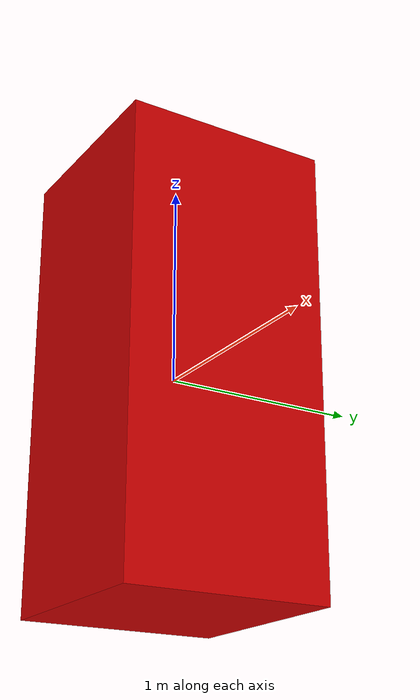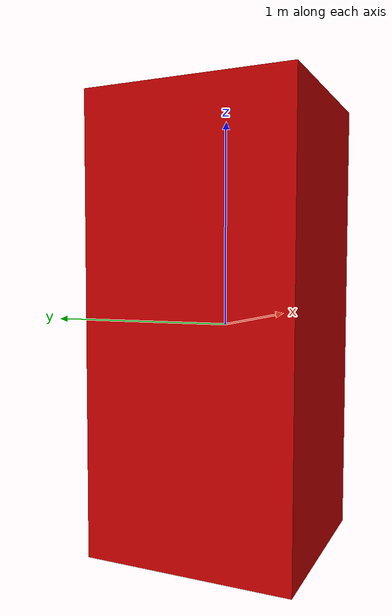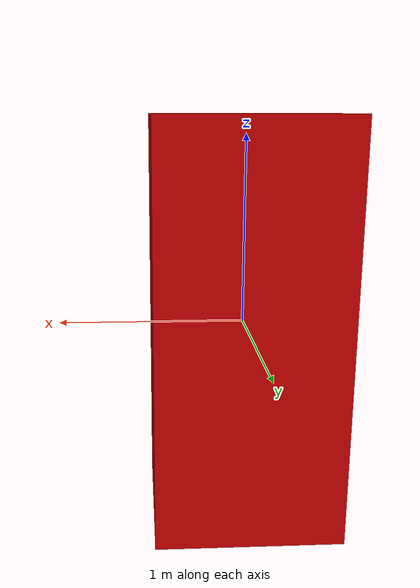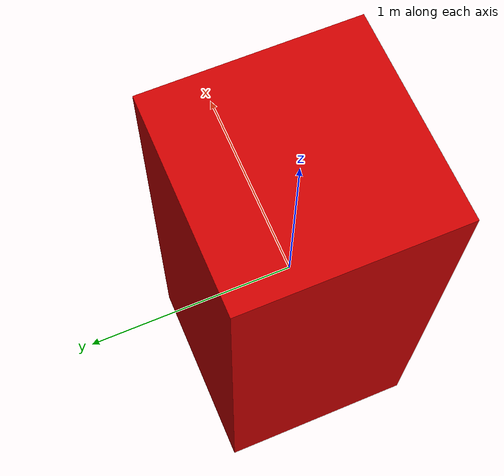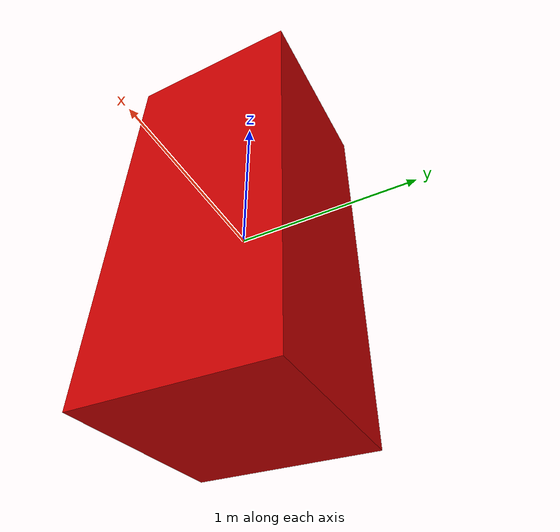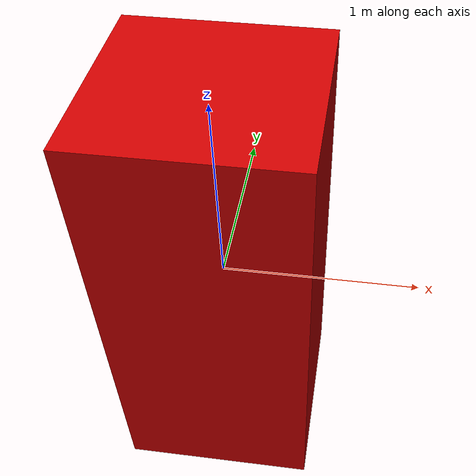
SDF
<?xml version="1.0" ?>
<sdf version="1.6">
    <model name="dynamic_obstacle_rectangle">
        <static>false</static>
        <link name="link">
            <inertial>
                <mass>10.0</mass>
                <inertia>
                    <ixx>4.8667</ixx>
                    <iyy>4.8667</iyy>
                    <izz>1.6667</izz>
                </inertia>
            </inertial>
            <visual name="visual">
                <geometry>
                    <box>
                        <size>1.0 1.0 2.2</size>
                    </box>
                </geometry>
                <material>
                    <diffuse>0.8 0.0 0.0 1</diffuse>
                    <ambient>0.8 0.0 0.0 1</ambient>
                </material>
            </visual>
            <collision name="collision">
                <geometry>
                    <box>
                        <size>1.0 1.0 2.2</size>
                    </box>
                </geometry>
            </collision>
        </link>
        <plugin filename="gz-sim-velocity-control-system"
                name="gz::sim::systems::VelocityControl">
            <topic>/model/dynamic_obstacle_rectangle/cmd_vel</topic>
        </plugin>
    </model>
</sdf>
